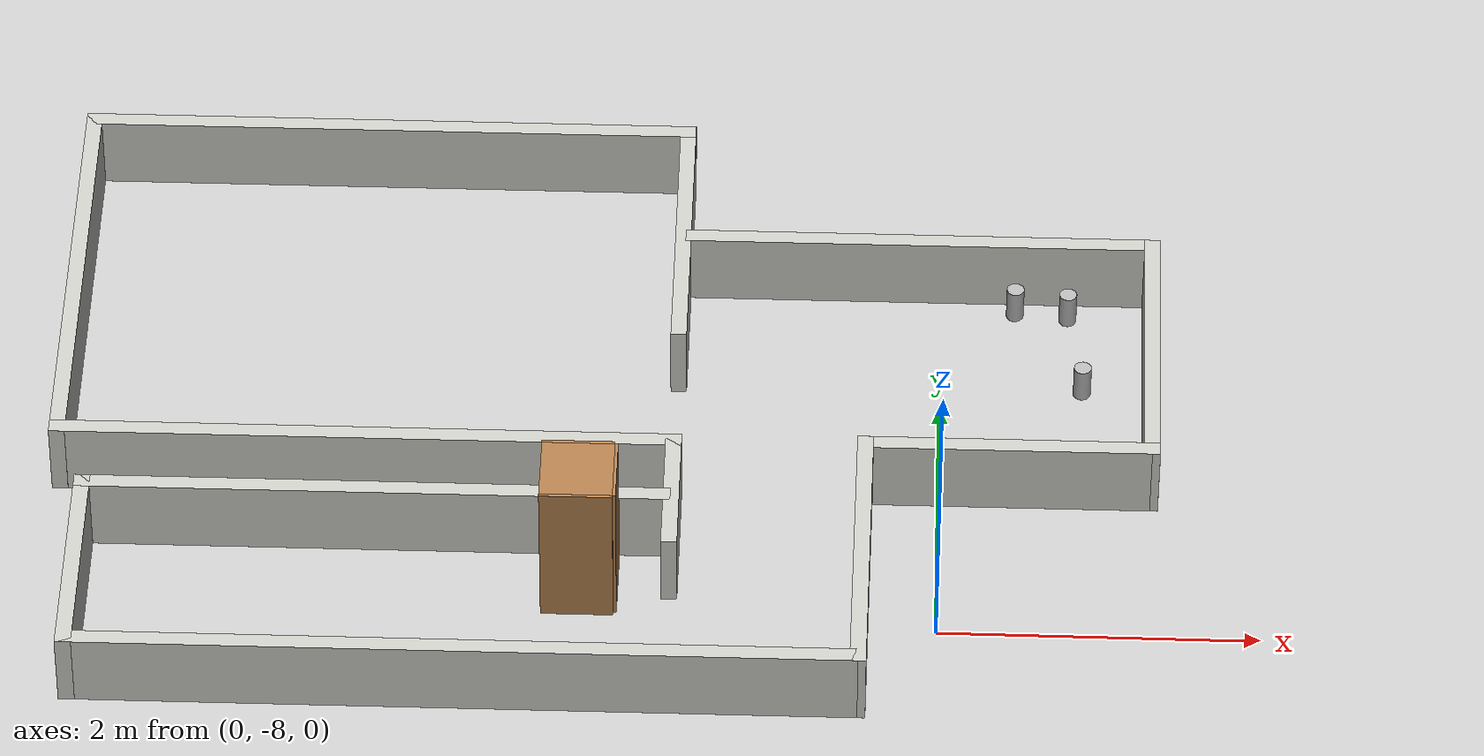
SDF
<sdf version="1.7">
 <world name="default">
  <light name="sun" type="directional">
   <pose>0 0 10 0 -0 0</pose>
   <diffuse>0.8 0.8 0.8 1</diffuse>
   <specular>0.2 0.2 0.2 1</specular>
   <attenuation>
    <range>1000</range>
    <constant>0.9</constant>
    <linear>0.01</linear>
    <quadratic>0.001</quadratic>
   </attenuation>
   <direction>-0.5 0.1 -0.9</direction>
   <spot><inner_angle>0</inner_angle><outer_angle>0</outer_angle><falloff>0</falloff></spot>
  </light>
  <model name="ground_plane">
   <static>1</static>
   <link name="link">
    <collision name="collision">
     <geometry><plane><normal>0 0 1</normal><size>100 100</size></plane></geometry>
     <surface><friction><ode><mu>100</mu><mu2>50</mu2></ode></friction></surface>
    </collision>
    <visual name="visual">
     <cast_shadows>0</cast_shadows>
     <geometry><plane><normal>0 0 1</normal><size>100 100</size></plane></geometry>
     <material>
      <script><uri>file://media/materials/scripts/gazebo.material</uri><name>Gazebo/Grey</name></script>
     </material>
    </visual>
   </link>
  </model>
  <gravity>0 0 -9.8</gravity>
  <magnetic_field>6e-06 2.3e-05 -4.2e-05</magnetic_field>
  <atmosphere type="adiabatic"/>
  <physics type="ode">
   <max_step_size>0.001</max_step_size>
   <real_time_factor>1</real_time_factor>
   <real_time_update_rate>1000</real_time_update_rate>
  </physics>
  <scene><ambient>0.4 0.4 0.4 1</ambient><background>0.7 0.7 0.7 1</background><shadows>1</shadows></scene>
  <audio><device>default</device></audio>
  <spherical_coordinates>
   <surface_model>EARTH_WGS84</surface_model>
   <latitude_deg>0</latitude_deg>
   <longitude_deg>0</longitude_deg>
   <elevation>0</elevation>
   <heading_deg>0</heading_deg>
  </spherical_coordinates>
  <model name="laika">
   <pose>-2.08732 -4.36768 0 0 -0 0</pose>
   <link name="Wall_17">
    <collision name="Wall_17_Collision">
     <geometry><box><size>3.95 0.1 0.5</size></box></geometry>
     <pose>0 0 0.25 0 -0 0</pose>
    </collision>
    <visual name="Wall_17_Visual">
     <pose>0 0 0.25 0 -0 0</pose>
     <geometry><box><size>3.95 0.1 0.5</size></box></geometry>
     <material>
      <script><uri>file://media/materials/scripts/gazebo.material</uri><name>Gazebo/CeilingTiled</name></script>
      <ambient>0.435294 0.796078 0.67451 1</ambient>
     </material>
     <meta><layer>0</layer></meta>
    </visual>
    <pose>-1.49667 0.362676 0 0 -0 3.14159</pose>
   </link>
   <link name="Wall_20">
    <collision name="Wall_20_Collision">
     <geometry><box><size>2.95049 0.1 0.5</size></box></geometry>
     <pose>0 0 0.25 0 -0 0</pose>
    </collision>
    <visual name="Wall_20_Visual">
     <pose>0 0 0.25 0 -0 0</pose>
     <geometry><box><size>2.95049 0.1 0.5</size></box></geometry>
     <material>
      <script><uri>file://media/materials/scripts/gazebo.material</uri><name>Gazebo/CeilingTiled</name></script>
      <ambient>0.435294 0.796078 0.67451 1</ambient>
     </material>
     <meta><layer>0</layer></meta>
    </visual>
    <pose>-3.42168 -1.06232 0 0 -0 -1.5708</pose>
   </link>
   <link name="Wall_22">
    <collision name="Wall_22_Collision">
     <geometry><box><size>3.94994 0.1 0.5</size></box></geometry>
     <pose>0 0 0.25 0 -0 0</pose>
    </collision>
    <visual name="Wall_22_Visual">
     <pose>0 0 0.25 0 -0 0</pose>
     <geometry><box><size>3.94994 0.1 0.5</size></box></geometry>
     <material>
      <script><uri>file://media/materials/scripts/gazebo.material</uri><name>Gazebo/CeilingTiled</name></script>
      <ambient>0.435294 0.796078 0.67451 1</ambient>
     </material>
     <meta><layer>0</layer></meta>
    </visual>
    <pose>-1.49667 -2.48732 0 0 -0 0</pose>
   </link>
   <link name="Wall_24">
    <collision name="Wall_24_Collision">
     <geometry><box><size>1.95049 0.1 0.5</size></box></geometry>
     <pose>0 0 0.25 0 -0 0</pose>
    </collision>
    <visual name="Wall_24_Visual">
     <pose>0 0 0.25 0 -0 0</pose>
     <geometry><box><size>1.95049 0.1 0.5</size></box></geometry>
     <material>
      <script><uri>file://media/materials/scripts/gazebo.material</uri><name>Gazebo/CeilingTiled</name></script>
      <ambient>0.435294 0.796078 0.67451 1</ambient>
     </material>
     <meta><layer>0</layer></meta>
    </visual>
    <pose>0.428325 -0.562324 0 0 -0 -1.5708</pose>
   </link>
   <link name="Wall_26">
    <collision name="Wall_26_Collision">
     <geometry><box><size>3.02716 0.1 0.5</size></box></geometry>
     <pose>0 0 0.25 0 -0 0</pose>
    </collision>
    <visual name="Wall_26_Visual">
     <pose>0 0 0.25 0 -0 0</pose>
     <geometry><box><size>3.02716 0.1 0.5</size></box></geometry>
     <material>
      <script><uri>file://media/materials/scripts/gazebo.material</uri><name>Gazebo/CeilingTiled</name></script>
      <ambient>0.435294 0.796078 0.67451 1</ambient>
     </material>
     <meta><layer>0</layer></meta>
    </visual>
    <pose>1.95782 -0.617324 0 0 -0 0</pose>
   </link>
   <link name="Wall_27">
    <collision name="Wall_27_Collision">
     <geometry><box><size>1.95005 0.1 0.5</size></box></geometry>
     <pose>0 0 0.25 0 -0 0</pose>
    </collision>
    <visual name="Wall_27_Visual">
     <pose>0 0 0.25 0 -0 0</pose>
     <geometry><box><size>1.95005 0.1 0.5</size></box></geometry>
     <material>
      <script><uri>file://media/materials/scripts/gazebo.material</uri><name>Gazebo/CeilingTiled</name></script>
      <ambient>0.435294 0.796078 0.67451 1</ambient>
     </material>
     <meta><layer>0</layer></meta>
    </visual>
    <pose>3.41482 -1.54232 0 0 -0 -1.57782</pose>
   </link>
   <link name="Wall_29">
    <collision name="Wall_29_Collision">
     <geometry><box><size>1.88541 0.1 0.5</size></box></geometry>
     <pose>0 0 0.25 0 -0 0</pose>
    </collision>
    <visual name="Wall_29_Visual">
     <pose>0 0 0.25 0 -0 0</pose>
     <geometry><box><size>1.88541 0.1 0.5</size></box></geometry>
     <material>
      <script><uri>file://media/materials/scripts/gazebo.material</uri><name>Gazebo/CeilingTiled</name></script>
      <ambient>0.435294 0.796078 0.67451 1</ambient>
     </material>
     <meta><layer>0</layer></meta>
    </visual>
    <pose>2.51582 -2.46732 0 0 -0 3.14159</pose>
   </link>
   <link name="Wall_31">
    <collision name="Wall_31_Collision">
     <geometry><box><size>0.950487 0.1 0.5</size></box></geometry>
     <pose>0 0 0.25 0 -0 0</pose>
    </collision>
    <visual name="Wall_31_Visual">
     <pose>0 0 0.25 0 -0 0</pose>
     <geometry><box><size>0.950487 0.1 0.5</size></box></geometry>
     <material>
      <script><uri>file://media/materials/scripts/gazebo.material</uri><name>Gazebo/CeilingTiled</name></script>
      <ambient>0.435294 0.796078 0.67451 1</ambient>
     </material>
     <meta><layer>0</layer></meta>
    </visual>
    <pose>0.428325 -2.91232 0 0 -0 -1.5708</pose>
   </link>
   <link name="Wall_33">
    <collision name="Wall_33_Collision">
     <geometry><box><size>1.95005 0.1 0.5</size></box></geometry>
     <pose>0 0 0.25 0 -0 0</pose>
    </collision>
    <visual name="Wall_33_Visual">
     <pose>0 0 0.25 0 -0 0</pose>
     <geometry><box><size>1.95005 0.1 0.5</size></box></geometry>
     <material>
      <script><uri>file://media/materials/scripts/gazebo.material</uri><name>Gazebo/CeilingTiled</name></script>
      <ambient>0.435294 0.796078 0.67451 1</ambient>
     </material>
     <meta><layer>0</layer></meta>
    </visual>
    <pose>1.61682 -3.39232 0 0 -0 -1.57782</pose>
   </link>
   <link name="Wall_34">
    <collision name="Wall_34_Collision">
     <geometry><box><size>4.937 0.1 0.5</size></box></geometry>
     <pose>0 0 0.25 0 -0 0</pose>
    </collision>
    <visual name="Wall_34_Visual">
     <pose>0 0 0.25 0 -0 0</pose>
     <geometry><box><size>4.937 0.1 0.5</size></box></geometry>
     <material>
      <script><uri>file://media/materials/scripts/gazebo.material</uri><name>Gazebo/CeilingTiled</name></script>
      <ambient>0.435294 0.796078 0.67451 1</ambient>
     </material>
     <meta><layer>0</layer></meta>
    </visual>
    <pose>-0.808175 -4.31732 0 0 -0 3.14159</pose>
   </link>
   <link name="Wall_35">
    <collision name="Wall_35_Collision">
     <geometry><box><size>1.45 0.1 0.5</size></box></geometry>
     <pose>0 0 0.25 0 -0 0</pose>
    </collision>
    <visual name="Wall_35_Visual">
     <pose>0 0 0.25 0 -0 0</pose>
     <geometry><box><size>1.45 0.1 0.5</size></box></geometry>
     <material>
      <script><uri>file://media/materials/scripts/gazebo.material</uri><name>Gazebo/CeilingTiled</name></script>
      <ambient>0.435294 0.796078 0.67451 1</ambient>
     </material>
     <meta><layer>0</layer></meta>
    </visual>
    <pose>-3.22668 -3.64232 0 0 -0 1.5708</pose>
   </link>
   <link name="Wall_36">
    <collision name="Wall_36_Collision">
     <geometry><box><size>3.69959 0.1 0.5</size></box></geometry>
     <pose>0 0 0.25 0 -0 0</pose>
    </collision>
    <visual name="Wall_36_Visual">
     <pose>0 0 0.25 0 -0 0</pose>
     <geometry><box><size>3.69959 0.1 0.5</size></box></geometry>
     <material>
      <script><uri>file://media/materials/scripts/gazebo.material</uri><name>Gazebo/CeilingTiled</name></script>
      <ambient>0.435294 0.796078 0.67451 1</ambient>
     </material>
     <meta><layer>0</layer></meta>
    </visual>
    <pose>-1.42667 -2.96732 0 0 -0 0</pose>
   </link>
   <static>1</static>
  </model>
  <model name="cabinet">
   <static>1</static>
   <link name="cabinet_bottom_plate">
    <inertial>
     <pose>0 0 -1 0 -0 0</pose>
     <inertia><ixx>2.05</ixx><ixy>0</ixy><ixz>0</ixz><iyy>2.05</iyy><iyz>0</iyz><izz>2.05</izz></inertia>
     <mass>25</mass>
    </inertial>
    <collision name="cabinet_bottom_plate_geom">
     <pose>0 0 0.01 0 -0 0</pose>
     <geometry><box><size>0.45 0.45 0.02</size></box></geometry>
    </collision>
    <visual name="cabinet_bottom_plate_geom_visual">
     <pose>0 0 0.01 0 -0 0</pose>
     <geometry><box><size>0.45 0.45 0.02</size></box></geometry>
     <material>
      <script><uri>file://media/materials/scripts/gazebo.material</uri><name>Gazebo/Wood</name></script>
     </material>
    </visual>
    <collision name="cabinet_bottom_plate_geom_cabinet_back_plate">
     <pose>0.235 0 0.51 0 -0 0</pose>
     <geometry><box><size>0.02 0.45 1.02</size></box></geometry>
    </collision>
    <visual name="cabinet_bottom_plate_geom_cabinet_back_plate_visual">
     <pose>0.235 0 0.51 0 -0 0</pose>
     <geometry><box><size>0.02 0.45 1.02</size></box></geometry>
     <material>
      <script><uri>file://media/materials/scripts/gazebo.material</uri><name>Gazebo/Wood</name></script>
     </material>
    </visual>
    <collision name="cabinet_bottom_plate_geom_cabinet_left_plate">
     <pose>0 0.235 0.51 0 -0 0</pose>
     <geometry><box><size>0.45 0.02 1.02</size></box></geometry>
    </collision>
    <visual name="cabinet_bottom_plate_geom_cabinet_left_plate_visual">
     <pose>0 0.235 0.51 0 -0 0</pose>
     <geometry><box><size>0.45 0.02 1.02</size></box></geometry>
     <material>
      <script><uri>file://media/materials/scripts/gazebo.material</uri><name>Gazebo/Wood</name></script>
     </material>
    </visual>
    <collision name="cabinet_bottom_plate_geom_cabinet_middle_plate">
     <pose>0 0 0.51 0 -0 0</pose>
     <geometry><box><size>0.45 0.45 0.02</size></box></geometry>
    </collision>
    <visual name="cabinet_bottom_plate_geom_cabinet_middle_plate_visual">
     <pose>0 0 0.51 0 -0 0</pose>
     <geometry><box><size>0.45 0.45 0.02</size></box></geometry>
     <material>
      <script><uri>file://media/materials/scripts/gazebo.material</uri><name>Gazebo/Wood</name></script>
     </material>
    </visual>
    <collision name="cabinet_bottom_plate_geom_cabinet_right_plate">
     <pose>0 -0.235 0.51 0 -0 0</pose>
     <geometry><box><size>0.45 0.02 1.02</size></box></geometry>
    </collision>
    <visual name="cabinet_bottom_plate_geom_cabinet_right_plate_visual">
     <pose>0 -0.235 0.51 0 -0 0</pose>
     <geometry><box><size>0.45 0.02 1.02</size></box></geometry>
     <material>
      <script><uri>file://media/materials/scripts/gazebo.material</uri><name>Gazebo/Wood</name></script>
     </material>
    </visual>
    <collision name="cabinet_bottom_plate_geom_cabinet_top_plate">
     <pose>0 0 1.01 0 -0 0</pose>
     <geometry><box><size>0.45 0.45 0.02</size></box></geometry>
    </collision>
    <visual name="cabinet_bottom_plate_geom_cabinet_top_plate_visual">
     <pose>0 0 1.01 0 -0 0</pose>
     <geometry><box><size>0.45 0.45 0.02</size></box></geometry>
     <material>
      <script><uri>file://media/materials/scripts/gazebo.material</uri><name>Gazebo/Wood</name></script>
     </material>
    </visual>
   </link>
   <pose>-2.22304 -7.66171 0 0 -0 0</pose>
  </model>
  <model name="beer">
   <link name="link">
    <pose>0 0 0.115 0 -0 0</pose>
    <inertial>
     <mass>0.39</mass>
     <inertia><ixx>0.00058</ixx><ixy>0</ixy><ixz>0</ixz><iyy>0.00058</iyy><iyz>0</iyz><izz>0.00019</izz></inertia>
    </inertial>
    <collision name="collision">
     <geometry><cylinder><radius>0.055</radius><length>0.23</length></cylinder></geometry>
    </collision>
    <visual name="visual">
     <geometry><cylinder><radius>0.055</radius><length>0.23</length></cylinder></geometry>
     <material>
      <script>
       <uri>model://beer/materials/scripts</uri>
       <uri>model://beer/materials/textures</uri>
       <name>Beer/Diffuse</name>
      </script>
     </material>
    </visual>
   </link>
   <pose>0.469985 -5.13723 0 0 -0 0</pose>
  </model>
  <model name="beer_0">
   <link name="link">
    <pose>0 0 0.115 0 -0 0</pose>
    <inertial>
     <mass>0.39</mass>
     <inertia><ixx>0.00058</ixx><ixy>0</ixy><ixz>0</ixz><iyy>0.00058</iyy><iyz>0</iyz><izz>0.00019</izz></inertia>
    </inertial>
    <collision name="collision">
     <geometry><cylinder><radius>0.055</radius><length>0.23</length></cylinder></geometry>
    </collision>
    <visual name="visual">
     <geometry><cylinder><radius>0.055</radius><length>0.23</length></cylinder></geometry>
     <material>
      <script>
       <uri>model://beer/materials/scripts</uri>
       <uri>model://beer/materials/textures</uri>
       <name>Beer/Diffuse</name>
      </script>
     </material>
    </visual>
   </link>
   <pose>0.806508 -5.17323 0 0 -0 0</pose>
  </model>
  <model name="beer_1">
   <link name="link">
    <pose>0 0 0.115 0 -0 0</pose>
    <inertial>
     <mass>0.39</mass>
     <inertia><ixx>0.00058</ixx><ixy>0</ixy><ixz>0</ixz><iyy>0.00058</iyy><iyz>0</iyz><izz>0.00019</izz></inertia>
    </inertial>
    <collision name="collision">
     <geometry><cylinder><radius>0.055</radius><length>0.23</length></cylinder></geometry>
    </collision>
    <visual name="visual">
     <geometry><cylinder><radius>0.055</radius><length>0.23</length></cylinder></geometry>
     <material>
      <script>
       <uri>model://beer/materials/scripts</uri>
       <uri>model://beer/materials/textures</uri>
       <name>Beer/Diffuse</name>
      </script>
     </material>
    </visual>
   </link>
   <pose>0.898523 -5.8458 0 0 -0 0</pose>
  </model>
 </world>
</sdf>
